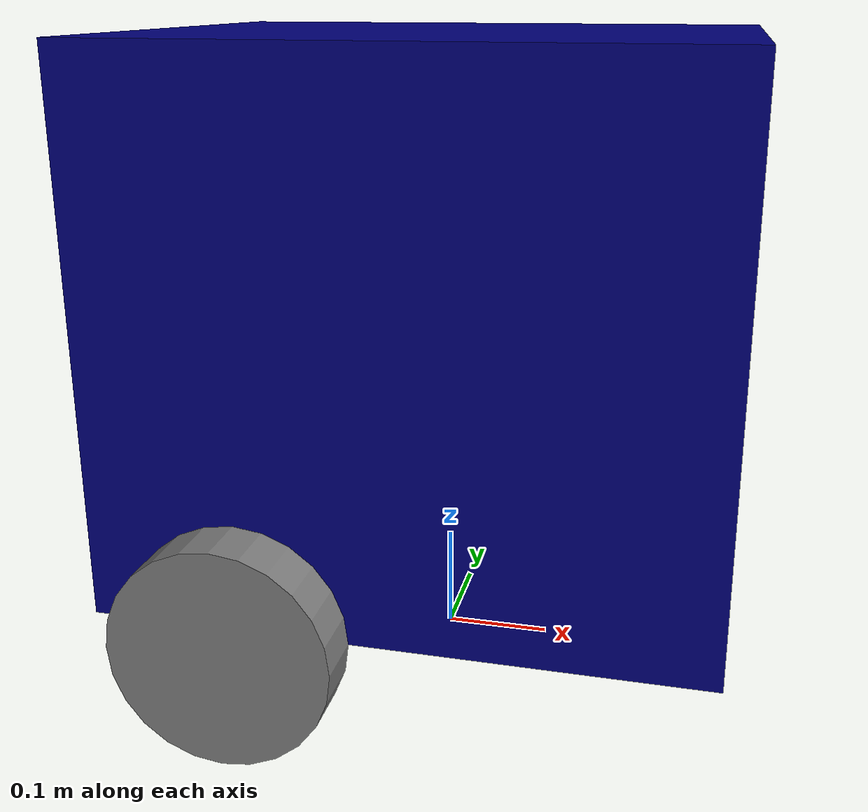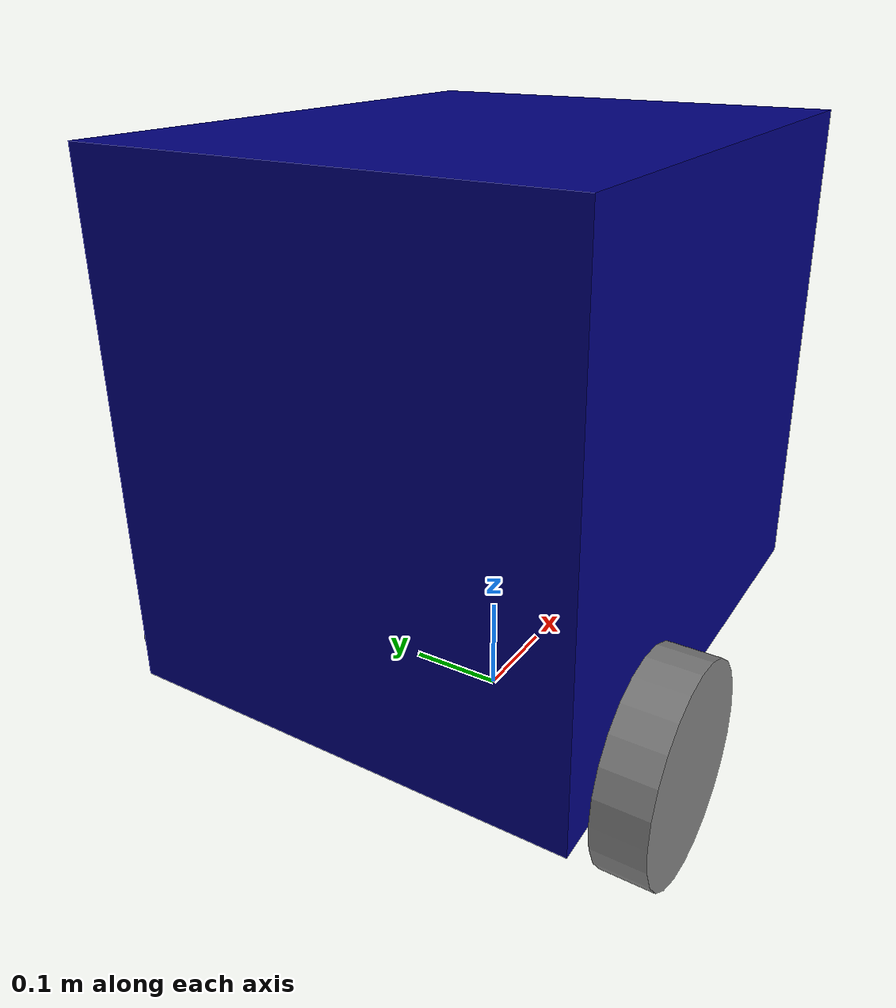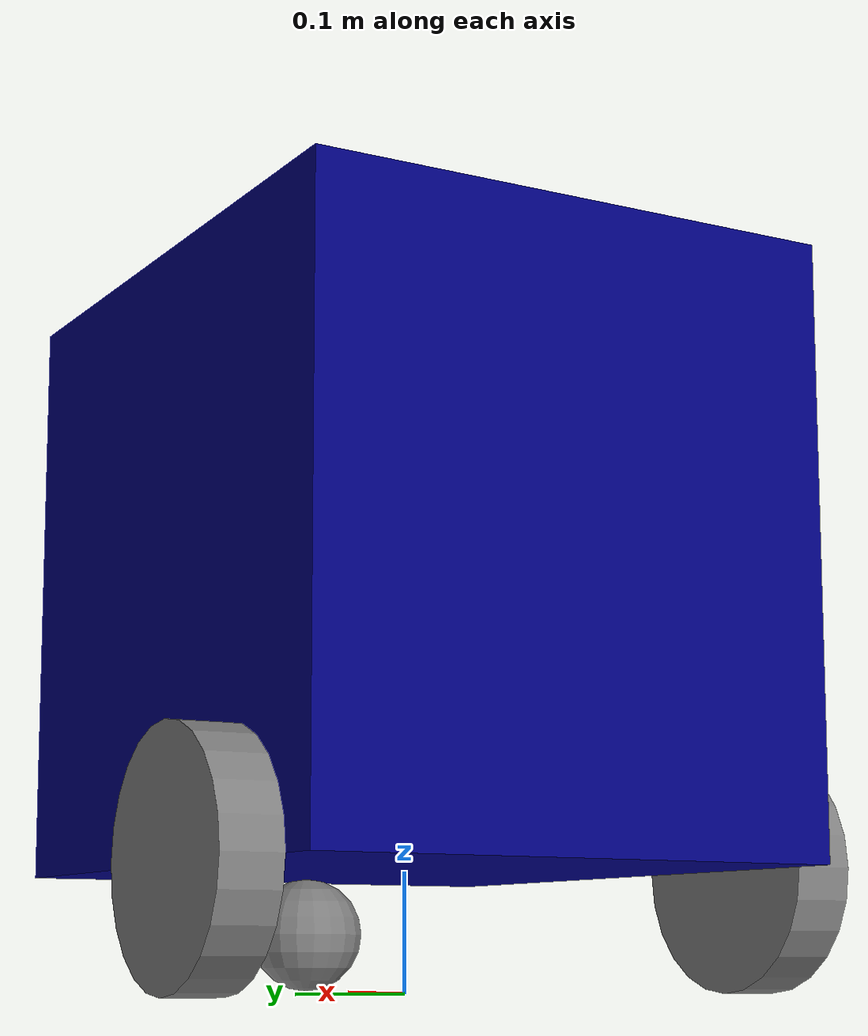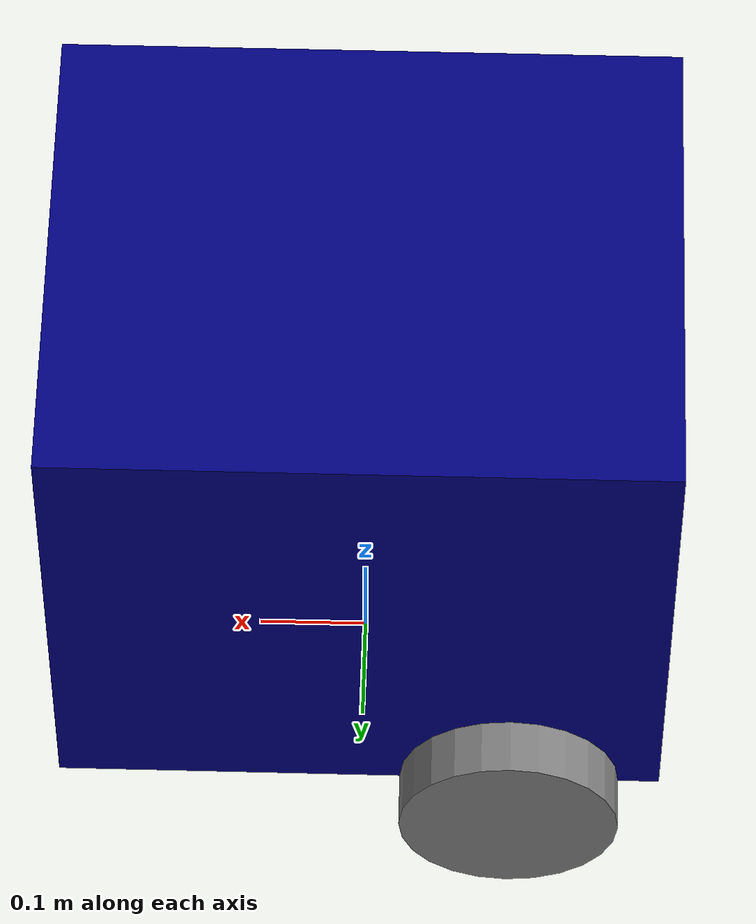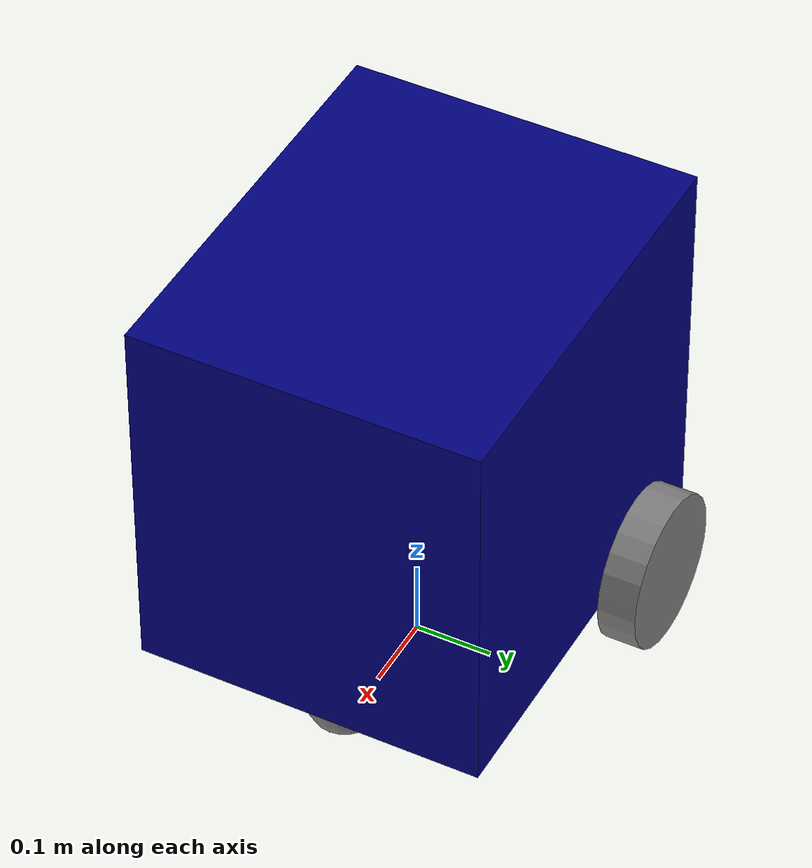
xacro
<?xml version="1.0"?>
<robot xmlns:xacro="http://www.ros.org/wiki/xacro">
    <xacro:include filename="common_properties.xacro" />
    <xacro:property name="base_length" value="0.55" />
    <xacro:property name="base_width" value="0.45" />
    <xacro:property name="base_height" value="0.5" />
    <xacro:property name="wheel_radius" value="0.1" />
    <xacro:property name="wheel_length" value="0.05" />

    <link name="base_footprint" />

    <link name="base_link">
        <visual>
            <geometry>
                <box size="${base_length} ${base_width} ${base_height}" />
            </geometry>
            <origin xyz="0 0 ${base_height / 2.0}" rpy="0 0 0" />
            <material name="blue" />
        </visual>
        <collision>
            <geometry>
                <box size="${base_length} ${base_width} ${base_height}" />
            </geometry>
            <origin xyz="0 0 ${base_height / 2.0}" rpy="0 0 0" />
        </collision>
        <xacro:box_inertia m="5.0" l="${2*base_length}" w="${2*base_width}" h="${2*base_height}"
                           xyz="0 0 ${base_height / 2.0}" rpy="0 0 0" />
    </link>

    <xacro:macro name="wheel_link" params="prefix">
        <link name="${prefix}_wheel_link">
            <visual>
                <geometry>
                    <cylinder radius="${wheel_radius}" length="${wheel_length}" />
                </geometry>
                <origin xyz="0 0 0" rpy="${pi / 2.0} 0 0" />
                <material name="grey" />
            </visual>
            <collision>
                <geometry>
                    <cylinder radius="${wheel_radius}" length="${wheel_length}" />
                </geometry>
                <origin xyz="0 0 0" rpy="${pi / 2.0} 0 0" />
            </collision>
            <xacro:cylinder_inertia m="1.0" r="${2*wheel_radius}" h="${2*wheel_length}"
                                    xyz="0 0 0" rpy="${pi / 2.0} 0 0" />
        </link>
    </xacro:macro>

    <xacro:wheel_link prefix="right" />
    <xacro:wheel_link prefix="left" />

    <link name="caster_wheel_link">
        <visual>
            <geometry>
                <sphere radius="${wheel_radius / 2.0}" />
            </geometry>
            <origin xyz="0 0 0" rpy="0 0 0" />
            <material name="grey" />
        </visual>
        <collision>
            <geometry>
                <sphere radius="${wheel_radius / 2.0}" />
            </geometry>
            <origin xyz="0 0 0" rpy="0 0 0" />
        </collision>
        <xacro:sphere_inertia m="0.5" r="${2*wheel_radius / 2.0}"
                              xyz="0 0 0" rpy="0 0 0" />
    </link>

    <joint name="base_joint" type="fixed">
        <parent link="base_footprint" />
        <child link="base_link" />
        <origin xyz="0 0 ${wheel_radius}" rpy="0 0 0"/>
    </joint>

    <joint name="base_right_wheel_joint" type="continuous">
        <parent link="base_link" />
        <child link="right_wheel_link" />
        <origin xyz="${-base_length / 4.0} ${-(base_width + wheel_length) / 2.0} 0" rpy="0 0 0" />
        <axis xyz="0 1 0" />
    </joint>

    <joint name="base_left_wheel_joint" type="continuous">
        <parent link="base_link" />
        <child link="left_wheel_link" />
        <origin xyz="${-base_length / 4.0} ${(base_width + wheel_length) / 2.0} 0" rpy="0 0 0" />
        <axis xyz="0 1 0" />
    </joint>

    <joint name="base_caster_wheel_joint" type="fixed">
        <parent link="base_link" />
        <child link="caster_wheel_link" />
        <origin xyz="${base_length / 3.0} 0 ${-wheel_radius / 2.0}" rpy="0 0 0" />
    </joint>

</robot>

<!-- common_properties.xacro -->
<robot xmlns:xacro="http://www.ros.org/wiki/xacro">
    <material name="blue">
        <color rgba="0 0 0.5 1" />
    </material>

    <material name="grey">
        <color rgba="0.5 0.5 0.5 1" />
    </material>

    <material name="black">
        <color rgba="0.0 0.0 0.0 1" />
    </material>

    <material name="orange">
        <color rgba="1.0 0.5 0 1" />
    </material>

    <material name="yellow">
        <color rgba="1.0 1.0 0 1" />
    </material>

    <xacro:macro name="box_inertia" params="m l w h xyz rpy">
        <inertial>
            <origin xyz="${xyz}" rpy="${rpy}" />
            <mass value="${m}" />
            <inertia ixx="${(m/12) * (h*h + l*l)}" ixy="0" ixz="0"
                iyy="${(m/12) * (w*w + l*l)}" iyz="0"
                izz="${(m/12) * (w*w + h*h)}" />
        </inertial>
    </xacro:macro>

    <xacro:macro name="inertial_block" params="mass length radius">
        <inertial>
            <origin xyz="0 0 ${length/2}" rpy="0 0 0" />
            <mass value="${mass}" />
            <inertia
                ixx="${mass / 12.0 * (2*radius*2*radius + length*length)}" ixy="0.0" ixz="0.0"
                iyy="${mass / 12.0 * (length*length + 2*radius*2*radius)}" iyz="0.0"
                izz="${mass / 12.0 * (2*radius*2*radius + 2*radius*2*radius)}" />
        </inertial>
    </xacro:macro>

    <xacro:macro name="cylinder_inertia" params="m r h xyz rpy">
        <inertial>
            <origin xyz="${xyz}" rpy="${rpy}" />
            <mass value="${m}" />
            <inertia ixx="${(m/12) * (3*r*r + h*h)}" ixy="0" ixz="0"
                iyy="${(m/12) * (3*r*r + h*h)}" iyz="0"
                izz="${(m/2) * (r*r)}" />
        </inertial>
    </xacro:macro>

    <xacro:macro name="sphere_inertia" params="m r xyz rpy">
        <inertial>
            <origin xyz="${xyz}" rpy="${rpy}" />
            <mass value="${m}" />
            <inertia ixx="${(2/5) * m * r * r}" ixy="0" ixz="0"
                iyy="${(2/5) * m * r * r}" iyz="0"
                izz="${(2/5) * m * r * r}" />
        </inertial>
    </xacro:macro>

</robot>
